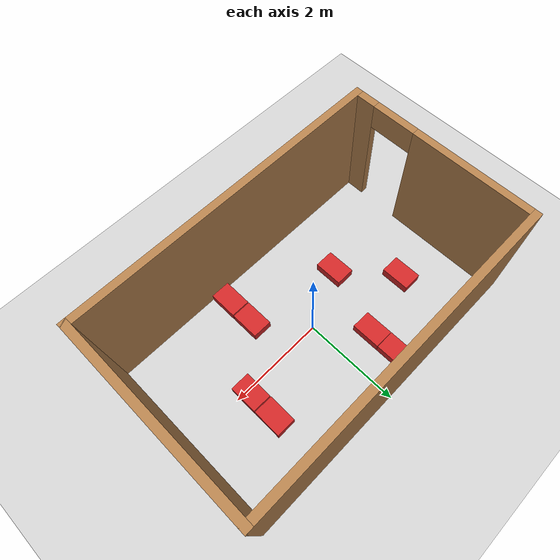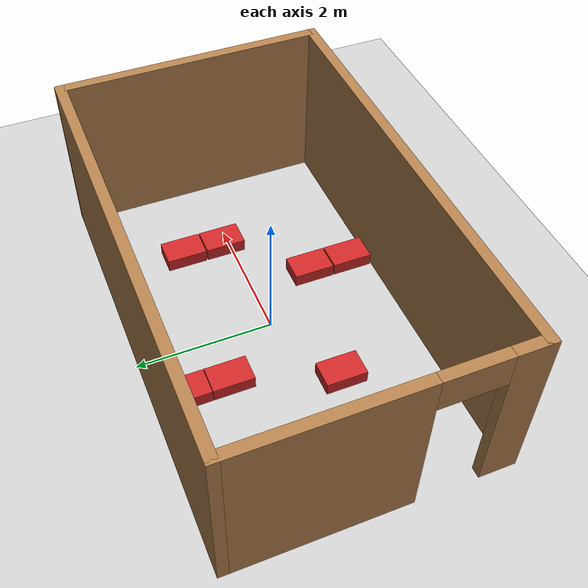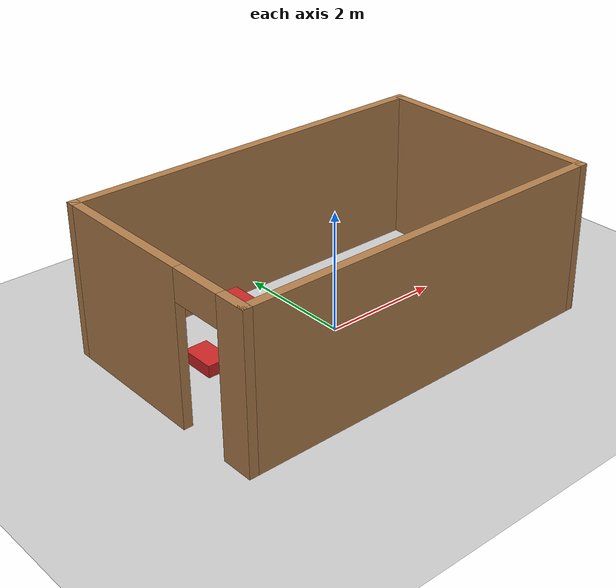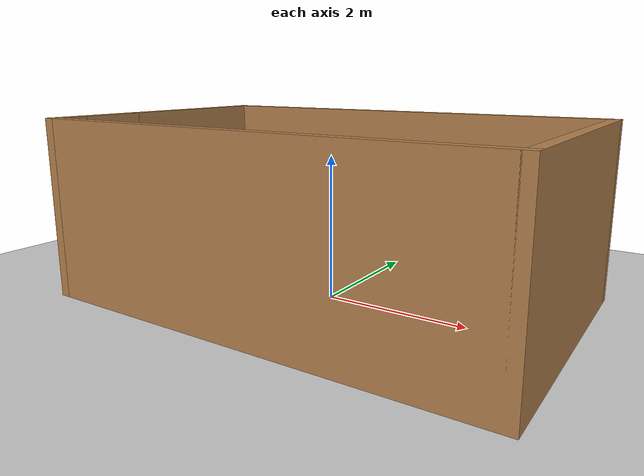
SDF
<sdf version="1.7">
 <world name="default">
  <light name="sun" type="directional">
   <pose>0 0 10 0 -0 0</pose>
   <diffuse>0.8 0.8 0.8 1</diffuse>
   <specular>0.2 0.2 0.2 1</specular>
   <attenuation>
    <range>1000</range>
    <constant>0.9</constant>
    <linear>0.01</linear>
    <quadratic>0.001</quadratic>
   </attenuation>
   <direction>-0.5 0.1 -0.9</direction>
   <spot><inner_angle>0</inner_angle><outer_angle>0</outer_angle><falloff>0</falloff></spot>
  </light>
  <model name="ground_plane">
   <static>1</static>
   <link name="link">
    <collision name="collision">
     <geometry><plane><normal>0 0 1</normal><size>100 100</size></plane></geometry>
     <surface><friction><ode><mu>100</mu><mu2>50</mu2></ode></friction></surface>
    </collision>
    <visual name="visual">
     <cast_shadows>0</cast_shadows>
     <geometry><plane><normal>0 0 1</normal><size>100 100</size></plane></geometry>
     <material>
      <script><uri>file://media/materials/scripts/gazebo.material</uri><name>Gazebo/Grey</name></script>
     </material>
    </visual>
   </link>
  </model>
  <gravity>0 0 -9.8</gravity>
  <magnetic_field>6e-06 2.3e-05 -4.2e-05</magnetic_field>
  <atmosphere type="adiabatic"/>
  <physics type="ode">
   <max_step_size>0.001</max_step_size>
   <real_time_factor>1</real_time_factor>
   <real_time_update_rate>1000</real_time_update_rate>
  </physics>
  <scene><ambient>0.4 0.4 0.4 1</ambient><background>0.7 0.7 0.7 1</background><shadows>1</shadows></scene>
  <audio><device>default</device></audio>
  <spherical_coordinates>
   <surface_model>EARTH_WGS84</surface_model>
   <latitude_deg>0</latitude_deg>
   <longitude_deg>0</longitude_deg>
   <elevation>0</elevation>
   <heading_deg>0</heading_deg>
  </spherical_coordinates>
  <model name="Arena_Wall">
   <pose>0 0.40001 0 0 -0 0</pose>
   <link name="Wall_0">
    <collision name="Wall_0_Collision">
     <geometry><box><size>6.5 0.15 2.5</size></box></geometry>
     <pose>0 0 1.25 0 -0 0</pose>
    </collision>
    <visual name="Wall_0_Visual">
     <pose>0 0 1.25 0 -0 0</pose>
     <geometry><box><size>6.5 0.15 2.5</size></box></geometry>
     <material>
      <script><uri>file://media/materials/scripts/gazebo.material</uri><name>Gazebo/Wood</name></script>
      <ambient>1 1 1 1</ambient>
     </material>
     <meta><layer>0</layer></meta>
    </visual>
    <pose>0 1.5025 0 0 -0 0</pose>
   </link>
   <link name="Wall_6">
    <pose>-3.175 -0.4225 0 0 -0 -1.5708</pose>
    <visual name="Wall_6_Visual_0">
     <pose>-0.718424 0 1.25 0 -0 0</pose>
     <geometry><box><size>2.56315 0.15 2.5</size></box></geometry>
     <material>
      <script><uri>file://media/materials/scripts/gazebo.material</uri><name>Gazebo/Wood</name></script>
      <ambient>1 1 1 1</ambient>
     </material>
     <meta><layer>0</layer></meta>
    </visual>
    <collision name="Wall_6_Collision_0">
     <geometry><box><size>2.56315 0.15 2.5</size></box></geometry>
     <pose>-0.718424 0 1.25 0 -0 0</pose>
    </collision>
    <visual name="Wall_6_Visual_1">
     <pose>1.73158 0 1.25 0 -0 0</pose>
     <geometry><box><size>0.536848 0.15 2.5</size></box></geometry>
     <material>
      <script><uri>file://media/materials/scripts/gazebo.material</uri><name>Gazebo/Wood</name></script>
      <ambient>1 1 1 1</ambient>
     </material>
     <meta><layer>0</layer></meta>
    </visual>
    <collision name="Wall_6_Collision_1">
     <geometry><box><size>0.536848 0.15 2.5</size></box></geometry>
     <pose>1.73158 0 1.25 0 -0 0</pose>
    </collision>
    <visual name="Wall_6_Visual_2">
     <pose>1.01315 0 2.25 0 -0 0</pose>
     <geometry><box><size>0.9 0.15 0.5</size></box></geometry>
     <material>
      <script><uri>file://media/materials/scripts/gazebo.material</uri><name>Gazebo/Wood</name></script>
      <ambient>1 1 1 1</ambient>
     </material>
     <meta><layer>0</layer></meta>
    </visual>
    <collision name="Wall_6_Collision_2">
     <geometry><box><size>0.9 0.15 0.5</size></box></geometry>
     <pose>1.01315 0 2.25 0 -0 0</pose>
    </collision>
   </link>
   <link name="Wall_7">
    <collision name="Wall_7_Collision">
     <geometry><box><size>6.5 0.15 2.5</size></box></geometry>
     <pose>0 0 1.25 0 -0 0</pose>
    </collision>
    <visual name="Wall_7_Visual">
     <pose>0 0 1.25 0 -0 0</pose>
     <geometry><box><size>6.5 0.15 2.5</size></box></geometry>
     <material>
      <script><uri>file://media/materials/scripts/gazebo.material</uri><name>Gazebo/Wood</name></script>
      <ambient>1 1 1 1</ambient>
     </material>
     <meta><layer>0</layer></meta>
    </visual>
    <pose>0 -2.3475 0 0 -0 0</pose>
   </link>
   <link name="Wall_8">
    <collision name="Wall_8_Collision">
     <geometry><box><size>4 0.15 2.5</size></box></geometry>
     <pose>0 0 1.25 0 -0 0</pose>
    </collision>
    <visual name="Wall_8_Visual">
     <pose>0 0 1.25 0 -0 0</pose>
     <geometry><box><size>4 0.15 2.5</size></box></geometry>
     <material>
      <script><uri>file://media/materials/scripts/gazebo.material</uri><name>Gazebo/Wood</name></script>
      <ambient>1 1 1 1</ambient>
     </material>
     <meta><layer>0</layer></meta>
    </visual>
    <pose>3.175 -0.4225 0 0 -0 1.5708</pose>
   </link>
   <static>1</static>
  </model>
  <model name="Kutija_CRTA">
   <link name="link_2">
    <inertial>
     <mass>100</mass>
     <inertia><ixx>3.33333</ixx><ixy>0</ixy><ixz>0</ixz><iyy>1.66667</iyy><iyz>0</iyz><izz>4.33333</izz></inertia>
     <pose>0 0 0.1 0 -0 0</pose>
    </inertial>
    <visual name="visual">
     <geometry><box><size>0.4 0.6 0.2</size></box></geometry>
     <material>
      <lighting>1</lighting>
      <script><uri>file://media/materials/scripts/gazebo.material</uri><name>Gazebo/Red</name></script>
      <shader type="pixel"><normal_map>__default__</normal_map></shader>
      <ambient>1 0 0 1</ambient>
      <diffuse>1 0 0 1</diffuse>
      <specular>0.1 0.1 0.1 1</specular>
      <emissive>0 0 0 1</emissive>
     </material>
    </visual>
    <collision name="collision">
     <geometry><box><size>0.4 0.6 0.2</size></box></geometry>
     <surface>
      <friction>
       <ode><mu>1</mu><mu2>1</mu2><fdir1>0 0 0</fdir1><slip1>0</slip1><slip2>0</slip2></ode>
       <torsional>
        <coefficient>1</coefficient>
        <patch_radius>0</patch_radius>
        <surface_radius>0</surface_radius>
        <use_patch_radius>1</use_patch_radius>
        <ode><slip>0</slip></ode>
       </torsional>
      </friction>
      <bounce><restitution_coefficient>0</restitution_coefficient><threshold>1e+06</threshold></bounce>
      <contact>
       <collide_without_contact>0</collide_without_contact>
       <collide_without_contact_bitmask>1</collide_without_contact_bitmask>
       <collide_bitmask>1</collide_bitmask>
       <ode>
        <soft_cfm>0</soft_cfm>
        <soft_erp>0.2</soft_erp>
        <kp>1e+13</kp>
        <kd>1</kd>
        <max_vel>0.01</max_vel>
        <min_depth>0</min_depth>
       </ode>
       <bullet>
        <split_impulse>1</split_impulse>
        <split_impulse_penetration_threshold>-0.01</split_impulse_penetration_threshold>
        <soft_cfm>0</soft_cfm>
        <soft_erp>0.2</soft_erp>
        <kp>1e+13</kp>
        <kd>1</kd>
       </bullet>
      </contact>
     </surface>
    </collision>
   </link>
   <static>0</static>
   <pose>0.75 -0.93 0.1 0 0 -0.001982</pose>
  </model>
  <model name="Kutija_CRTA_clone">
   <link name="link_2">
    <inertial>
     <mass>100</mass>
     <inertia><ixx>3.33333</ixx><ixy>0</ixy><ixz>0</ixz><iyy>1.66667</iyy><iyz>0</iyz><izz>4.33333</izz></inertia>
     <pose>0 0 0.1 0 -0 0</pose>
    </inertial>
    <visual name="visual">
     <geometry><box><size>0.4 0.6 0.2</size></box></geometry>
     <material>
      <lighting>1</lighting>
      <script><uri>file://media/materials/scripts/gazebo.material</uri><name>Gazebo/Red</name></script>
      <shader type="pixel"><normal_map>__default__</normal_map></shader>
      <ambient>1 0 0 1</ambient>
      <diffuse>1 0 0 1</diffuse>
      <specular>0.1 0.1 0.1 1</specular>
      <emissive>0 0 0 1</emissive>
     </material>
    </visual>
    <collision name="collision">
     <geometry><box><size>0.4 0.6 0.2</size></box></geometry>
     <surface>
      <friction>
       <ode><mu>1</mu><mu2>1</mu2><fdir1>0 0 0</fdir1><slip1>0</slip1><slip2>0</slip2></ode>
       <torsional>
        <coefficient>1</coefficient>
        <patch_radius>0</patch_radius>
        <surface_radius>0</surface_radius>
        <use_patch_radius>1</use_patch_radius>
        <ode><slip>0</slip></ode>
       </torsional>
      </friction>
      <bounce><restitution_coefficient>0</restitution_coefficient><threshold>1e+06</threshold></bounce>
      <contact>
       <collide_without_contact>0</collide_without_contact>
       <collide_without_contact_bitmask>1</collide_without_contact_bitmask>
       <collide_bitmask>1</collide_bitmask>
       <ode>
        <soft_cfm>0</soft_cfm>
        <soft_erp>0.2</soft_erp>
        <kp>1e+13</kp>
        <kd>1</kd>
        <max_vel>0.01</max_vel>
        <min_depth>0</min_depth>
       </ode>
       <bullet>
        <split_impulse>1</split_impulse>
        <split_impulse_penetration_threshold>-0.01</split_impulse_penetration_threshold>
        <soft_cfm>0</soft_cfm>
        <soft_erp>0.2</soft_erp>
        <kp>1e+13</kp>
        <kd>1</kd>
       </bullet>
      </contact>
     </surface>
    </collision>
   </link>
   <static>0</static>
   <pose>0.749991 -1.55061 0.1 0 0 -0.001972</pose>
  </model>
  <model name="Kutija_CRTA_clone_0">
   <link name="link_2">
    <inertial>
     <mass>100</mass>
     <inertia><ixx>3.33333</ixx><ixy>0</ixy><ixz>0</ixz><iyy>1.66667</iyy><iyz>0</iyz><izz>4.33333</izz></inertia>
     <pose>0 0 0.1 0 -0 0</pose>
    </inertial>
    <visual name="visual">
     <geometry><box><size>0.4 0.6 0.2</size></box></geometry>
     <material>
      <lighting>1</lighting>
      <script><uri>file://media/materials/scripts/gazebo.material</uri><name>Gazebo/Red</name></script>
      <shader type="pixel"><normal_map>__default__</normal_map></shader>
      <ambient>1 0 0 1</ambient>
      <diffuse>1 0 0 1</diffuse>
      <specular>0.1 0.1 0.1 1</specular>
      <emissive>0 0 0 1</emissive>
     </material>
    </visual>
    <collision name="collision">
     <geometry><box><size>0.4 0.6 0.2</size></box></geometry>
     <surface>
      <friction>
       <ode><mu>1</mu><mu2>1</mu2><fdir1>0 0 0</fdir1><slip1>0</slip1><slip2>0</slip2></ode>
       <torsional>
        <coefficient>1</coefficient>
        <patch_radius>0</patch_radius>
        <surface_radius>0</surface_radius>
        <use_patch_radius>1</use_patch_radius>
        <ode><slip>0</slip></ode>
       </torsional>
      </friction>
      <bounce><restitution_coefficient>0</restitution_coefficient><threshold>1e+06</threshold></bounce>
      <contact>
       <collide_without_contact>0</collide_without_contact>
       <collide_without_contact_bitmask>1</collide_without_contact_bitmask>
       <collide_bitmask>1</collide_bitmask>
       <ode>
        <soft_cfm>0</soft_cfm>
        <soft_erp>0.2</soft_erp>
        <kp>1e+13</kp>
        <kd>1</kd>
        <max_vel>0.01</max_vel>
        <min_depth>0</min_depth>
       </ode>
       <bullet>
        <split_impulse>1</split_impulse>
        <split_impulse_penetration_threshold>-0.01</split_impulse_penetration_threshold>
        <soft_cfm>0</soft_cfm>
        <soft_erp>0.2</soft_erp>
        <kp>1e+13</kp>
        <kd>1</kd>
       </bullet>
      </contact>
     </surface>
    </collision>
   </link>
   <static>0</static>
   <pose>-1.2 -0.55 0.1 0 0 -0.002016</pose>
  </model>
  <model name="Kutija_CRTA_clone_0_clone">
   <link name="link_2">
    <inertial>
     <mass>100</mass>
     <inertia><ixx>3.33333</ixx><ixy>0</ixy><ixz>0</ixz><iyy>1.66667</iyy><iyz>0</iyz><izz>4.33333</izz></inertia>
     <pose>0 0 0.1 0 -0 0</pose>
    </inertial>
    <visual name="visual">
     <geometry><box><size>0.4 0.6 0.2</size></box></geometry>
     <material>
      <lighting>1</lighting>
      <script><uri>file://media/materials/scripts/gazebo.material</uri><name>Gazebo/Red</name></script>
      <shader type="pixel"><normal_map>__default__</normal_map></shader>
      <ambient>1 0 0 1</ambient>
      <diffuse>1 0 0 1</diffuse>
      <specular>0.1 0.1 0.1 1</specular>
      <emissive>0 0 0 1</emissive>
     </material>
    </visual>
    <collision name="collision">
     <geometry><box><size>0.4 0.6 0.2</size></box></geometry>
     <surface>
      <friction>
       <ode><mu>1</mu><mu2>1</mu2><fdir1>0 0 0</fdir1><slip1>0</slip1><slip2>0</slip2></ode>
       <torsional>
        <coefficient>1</coefficient>
        <patch_radius>0</patch_radius>
        <surface_radius>0</surface_radius>
        <use_patch_radius>1</use_patch_radius>
        <ode><slip>0</slip></ode>
       </torsional>
      </friction>
      <bounce><restitution_coefficient>0</restitution_coefficient><threshold>1e+06</threshold></bounce>
      <contact>
       <collide_without_contact>0</collide_without_contact>
       <collide_without_contact_bitmask>1</collide_without_contact_bitmask>
       <collide_bitmask>1</collide_bitmask>
       <ode>
        <soft_cfm>0</soft_cfm>
        <soft_erp>0.2</soft_erp>
        <kp>1e+13</kp>
        <kd>1</kd>
        <max_vel>0.01</max_vel>
        <min_depth>0</min_depth>
       </ode>
       <bullet>
        <split_impulse>1</split_impulse>
        <split_impulse_penetration_threshold>-0.01</split_impulse_penetration_threshold>
        <soft_cfm>0</soft_cfm>
        <soft_erp>0.2</soft_erp>
        <kp>1e+13</kp>
        <kd>1</kd>
       </bullet>
      </contact>
     </surface>
    </collision>
   </link>
   <static>0</static>
   <pose>-2.05 0.5 0.1 0 0 -0.002016</pose>
  </model>
  <model name="Kutija_CRTA_clone_0_clone_0">
   <link name="link_2">
    <inertial>
     <mass>100</mass>
     <inertia><ixx>3.33333</ixx><ixy>0</ixy><ixz>0</ixz><iyy>1.66667</iyy><iyz>0</iyz><izz>4.33333</izz></inertia>
     <pose>0 0 0.1 0 -0 0</pose>
    </inertial>
    <visual name="visual">
     <geometry><box><size>0.4 0.6 0.2</size></box></geometry>
     <material>
      <lighting>1</lighting>
      <script><uri>file://media/materials/scripts/gazebo.material</uri><name>Gazebo/Red</name></script>
      <shader type="pixel"><normal_map>__default__</normal_map></shader>
      <ambient>1 0 0 1</ambient>
      <diffuse>1 0 0 1</diffuse>
      <specular>0.1 0.1 0.1 1</specular>
      <emissive>0 0 0 1</emissive>
     </material>
    </visual>
    <collision name="collision">
     <geometry><box><size>0.4 0.6 0.2</size></box></geometry>
     <surface>
      <friction>
       <ode><mu>1</mu><mu2>1</mu2><fdir1>0 0 0</fdir1><slip1>0</slip1><slip2>0</slip2></ode>
       <torsional>
        <coefficient>1</coefficient>
        <patch_radius>0</patch_radius>
        <surface_radius>0</surface_radius>
        <use_patch_radius>1</use_patch_radius>
        <ode><slip>0</slip></ode>
       </torsional>
      </friction>
      <bounce><restitution_coefficient>0</restitution_coefficient><threshold>1e+06</threshold></bounce>
      <contact>
       <collide_without_contact>0</collide_without_contact>
       <collide_without_contact_bitmask>1</collide_without_contact_bitmask>
       <collide_bitmask>1</collide_bitmask>
       <ode>
        <soft_cfm>0</soft_cfm>
        <soft_erp>0.2</soft_erp>
        <kp>1e+13</kp>
        <kd>1</kd>
        <max_vel>0.01</max_vel>
        <min_depth>0</min_depth>
       </ode>
       <bullet>
        <split_impulse>1</split_impulse>
        <split_impulse_penetration_threshold>-0.01</split_impulse_penetration_threshold>
        <soft_cfm>0</soft_cfm>
        <soft_erp>0.2</soft_erp>
        <kp>1e+13</kp>
        <kd>1</kd>
       </bullet>
      </contact>
     </surface>
    </collision>
   </link>
   <static>0</static>
   <pose>-0.72001 0.89 0.1 0 0 -0.002016</pose>
  </model>
  <model name="Kutija_CRTA_clone_0_clone_1">
   <link name="link_2">
    <inertial>
     <mass>100</mass>
     <inertia><ixx>3.33333</ixx><ixy>0</ixy><ixz>0</ixz><iyy>1.66667</iyy><iyz>0</iyz><izz>4.33333</izz></inertia>
     <pose>0 0 0.1 0 -0 0</pose>
    </inertial>
    <visual name="visual">
     <geometry><box><size>0.4 0.6 0.2</size></box></geometry>
     <material>
      <lighting>1</lighting>
      <script><uri>file://media/materials/scripts/gazebo.material</uri><name>Gazebo/Red</name></script>
      <shader type="pixel"><normal_map>__default__</normal_map></shader>
      <ambient>1 0 0 1</ambient>
      <diffuse>1 0 0 1</diffuse>
      <specular>0.1 0.1 0.1 1</specular>
      <emissive>0 0 0 1</emissive>
     </material>
    </visual>
    <collision name="collision">
     <geometry><box><size>0.4 0.6 0.2</size></box></geometry>
     <surface>
      <friction>
       <ode><mu>1</mu><mu2>1</mu2><fdir1>0 0 0</fdir1><slip1>0</slip1><slip2>0</slip2></ode>
       <torsional>
        <coefficient>1</coefficient>
        <patch_radius>0</patch_radius>
        <surface_radius>0</surface_radius>
        <use_patch_radius>1</use_patch_radius>
        <ode><slip>0</slip></ode>
       </torsional>
      </friction>
      <bounce><restitution_coefficient>0</restitution_coefficient><threshold>1e+06</threshold></bounce>
      <contact>
       <collide_without_contact>0</collide_without_contact>
       <collide_without_contact_bitmask>1</collide_without_contact_bitmask>
       <collide_bitmask>1</collide_bitmask>
       <ode>
        <soft_cfm>0</soft_cfm>
        <soft_erp>0.2</soft_erp>
        <kp>1e+13</kp>
        <kd>1</kd>
        <max_vel>0.01</max_vel>
        <min_depth>0</min_depth>
       </ode>
       <bullet>
        <split_impulse>1</split_impulse>
        <split_impulse_penetration_threshold>-0.01</split_impulse_penetration_threshold>
        <soft_cfm>0</soft_cfm>
        <soft_erp>0.2</soft_erp>
        <kp>1e+13</kp>
        <kd>1</kd>
       </bullet>
      </contact>
     </surface>
    </collision>
   </link>
   <static>0</static>
   <pose>-0.72 1.5 0.1 0 0 -0.002016</pose>
  </model>
  <model name="Kutija_CRTA_clone_0_clone_0_clone">
   <link name="link_2">
    <inertial>
     <mass>100</mass>
     <inertia><ixx>3.33333</ixx><ixy>0</ixy><ixz>0</ixz><iyy>1.66667</iyy><iyz>0</iyz><izz>4.33333</izz></inertia>
     <pose>0 0 0.1 0 -0 0</pose>
    </inertial>
    <visual name="visual">
     <geometry><box><size>0.4 0.6 0.2</size></box></geometry>
     <material>
      <lighting>1</lighting>
      <script><uri>file://media/materials/scripts/gazebo.material</uri><name>Gazebo/Red</name></script>
      <shader type="pixel"><normal_map>__default__</normal_map></shader>
      <ambient>1 0 0 1</ambient>
      <diffuse>1 0 0 1</diffuse>
      <specular>0.1 0.1 0.1 1</specular>
      <emissive>0 0 0 1</emissive>
     </material>
    </visual>
    <collision name="collision">
     <geometry><box><size>0.4 0.6 0.2</size></box></geometry>
     <surface>
      <friction>
       <ode><mu>1</mu><mu2>1</mu2><fdir1>0 0 0</fdir1><slip1>0</slip1><slip2>0</slip2></ode>
       <torsional>
        <coefficient>1</coefficient>
        <patch_radius>0</patch_radius>
        <surface_radius>0</surface_radius>
        <use_patch_radius>1</use_patch_radius>
        <ode><slip>0</slip></ode>
       </torsional>
      </friction>
      <bounce><restitution_coefficient>0</restitution_coefficient><threshold>1e+06</threshold></bounce>
      <contact>
       <collide_without_contact>0</collide_without_contact>
       <collide_without_contact_bitmask>1</collide_without_contact_bitmask>
       <collide_bitmask>1</collide_bitmask>
       <ode>
        <soft_cfm>0</soft_cfm>
        <soft_erp>0.2</soft_erp>
        <kp>1e+13</kp>
        <kd>1</kd>
        <max_vel>0.01</max_vel>
        <min_depth>0</min_depth>
       </ode>
       <bullet>
        <split_impulse>1</split_impulse>
        <split_impulse_penetration_threshold>-0.01</split_impulse_penetration_threshold>
        <soft_cfm>0</soft_cfm>
        <soft_erp>0.2</soft_erp>
        <kp>1e+13</kp>
        <kd>1</kd>
       </bullet>
      </contact>
     </surface>
    </collision>
   </link>
   <static>0</static>
   <pose>1.75 0.11 0.1 0 -0 -0.002016</pose>
  </model>
  <model name="Kutija_CRTA_clone_0_clone_0_clone_0">
   <link name="link_2">
    <inertial>
     <mass>100</mass>
     <inertia><ixx>3.33333</ixx><ixy>0</ixy><ixz>0</ixz><iyy>1.66667</iyy><iyz>0</iyz><izz>4.33333</izz></inertia>
     <pose>0 0 0.1 0 -0 0</pose>
    </inertial>
    <visual name="visual">
     <geometry><box><size>0.4 0.6 0.2</size></box></geometry>
     <material>
      <lighting>1</lighting>
      <script><uri>file://media/materials/scripts/gazebo.material</uri><name>Gazebo/Red</name></script>
      <shader type="pixel"><normal_map>__default__</normal_map></shader>
      <ambient>1 0 0 1</ambient>
      <diffuse>1 0 0 1</diffuse>
      <specular>0.1 0.1 0.1 1</specular>
      <emissive>0 0 0 1</emissive>
     </material>
    </visual>
    <collision name="collision">
     <geometry><box><size>0.4 0.6 0.2</size></box></geometry>
     <surface>
      <friction>
       <ode><mu>1</mu><mu2>1</mu2><fdir1>0 0 0</fdir1><slip1>0</slip1><slip2>0</slip2></ode>
       <torsional>
        <coefficient>1</coefficient>
        <patch_radius>0</patch_radius>
        <surface_radius>0</surface_radius>
        <use_patch_radius>1</use_patch_radius>
        <ode><slip>0</slip></ode>
       </torsional>
      </friction>
      <bounce><restitution_coefficient>0</restitution_coefficient><threshold>1e+06</threshold></bounce>
      <contact>
       <collide_without_contact>0</collide_without_contact>
       <collide_without_contact_bitmask>1</collide_without_contact_bitmask>
       <collide_bitmask>1</collide_bitmask>
       <ode>
        <soft_cfm>0</soft_cfm>
        <soft_erp>0.2</soft_erp>
        <kp>1e+13</kp>
        <kd>1</kd>
        <max_vel>0.01</max_vel>
        <min_depth>0</min_depth>
       </ode>
       <bullet>
        <split_impulse>1</split_impulse>
        <split_impulse_penetration_threshold>-0.01</split_impulse_penetration_threshold>
        <soft_cfm>0</soft_cfm>
        <soft_erp>0.2</soft_erp>
        <kp>1e+13</kp>
        <kd>1</kd>
       </bullet>
      </contact>
     </surface>
    </collision>
   </link>
   <static>0</static>
   <pose>1.75 0.73 0.1 0 -0 -0.002016</pose>
  </model>
 </world>
</sdf>
